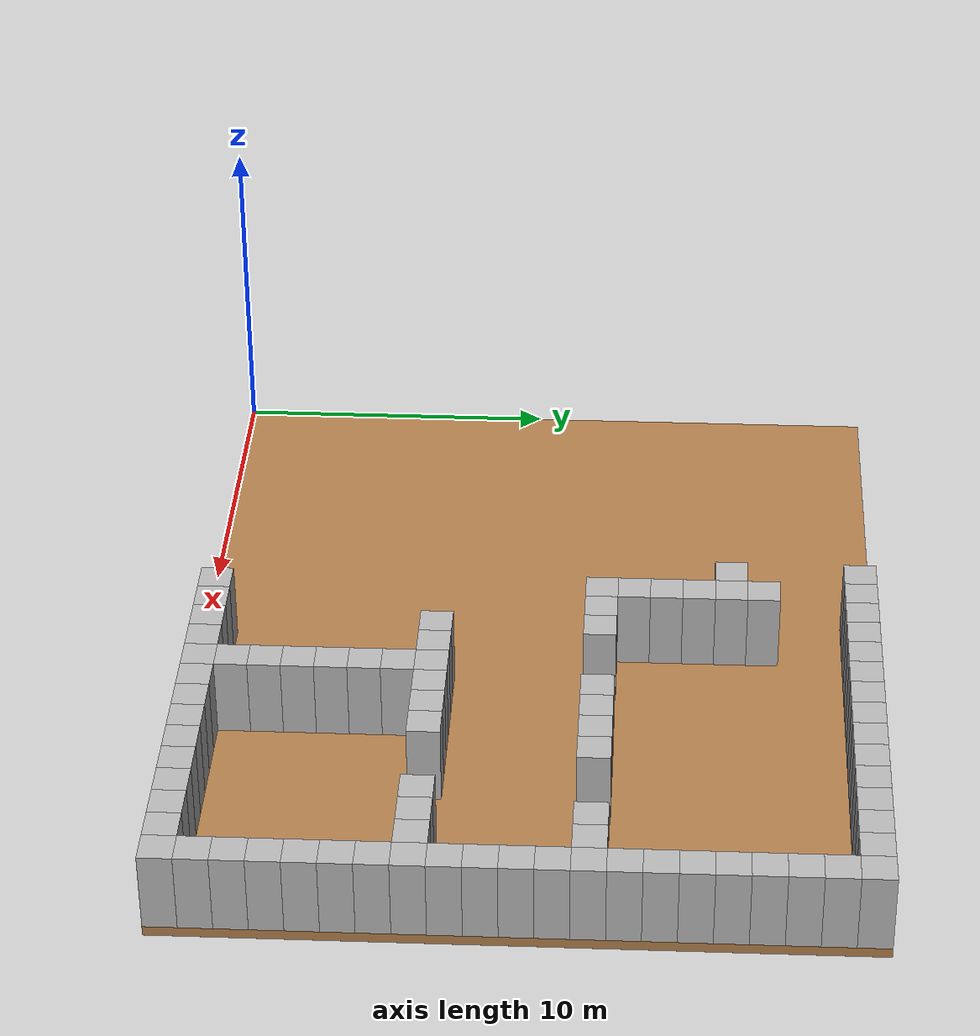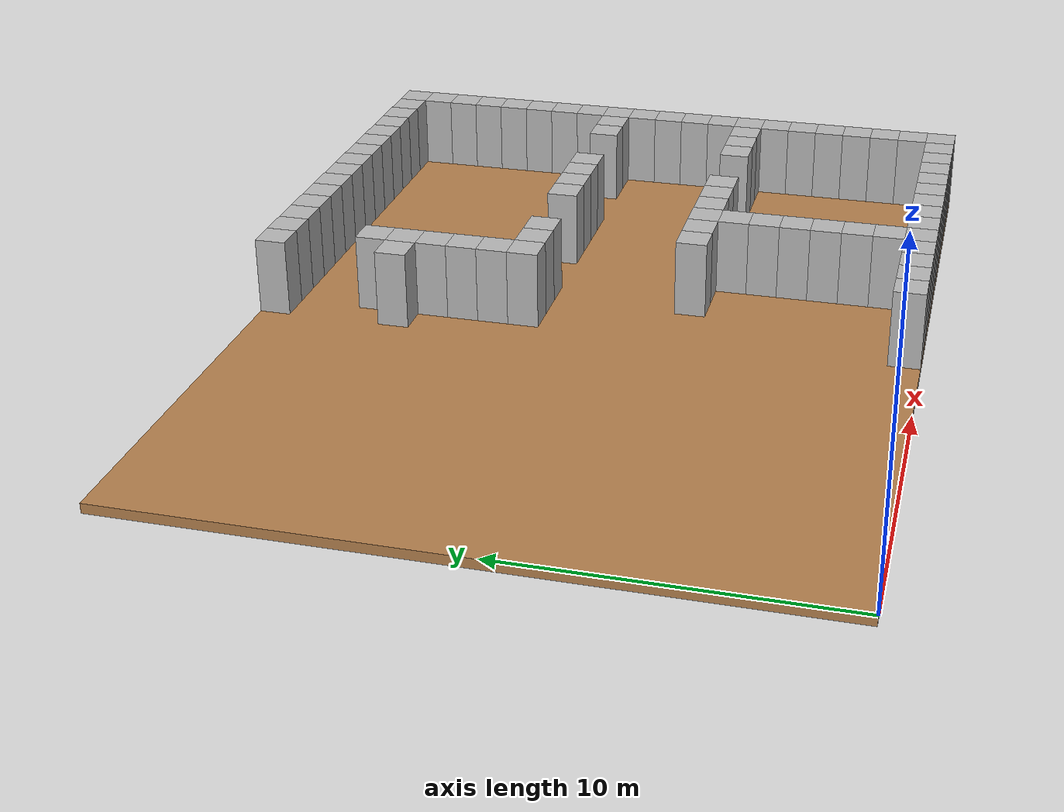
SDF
<sdf version="1.4">
 <world name="default">
  <model name="floor">
   <pose>13.5 10.5 -0.15625 0 0 0</pose>
   <static>true</static>
   <link name="link">
    <collision name="collision"><geometry><box><size>27.0 21.0 0.3125</size></box></geometry></collision>
    <visual name="visual">
     <material>
      <script><uri>file://media/materials/scripts/Gazebo.material</uri><name>Gazebo/Wood</name></script>
     </material>
     <geometry><box><size>27.0 21.0 0.3125</size></box></geometry>
    </visual>
   </link>
  </model>
  <model name="box_12_16">
   <pose>12.5 16.5 1.25 0 0 0</pose>
   <static>true</static>
   <link name="link">
    <collision name="collision"><geometry><box><size>1.0 1.0 2.5</size></box></geometry></collision>
    <visual name="body_visual">
     <material>
      <script><uri>file://media/materials/scripts/repeated.material</uri><name>Repeated/seamless</name></script>
     </material>
     <geometry><box><size>1.0 1.0 2.5</size></box></geometry>
    </visual>
   </link>
  </model>
  <model name="box_12_20">
   <pose>12.5 20.5 1.25 0 0 0</pose>
   <static>true</static>
   <link name="link">
    <collision name="collision"><geometry><box><size>1.0 1.0 2.5</size></box></geometry></collision>
    <visual name="body_visual">
     <material>
      <script><uri>file://media/materials/scripts/repeated.material</uri><name>Repeated/seamless</name></script>
     </material>
     <geometry><box><size>1.0 1.0 2.5</size></box></geometry>
    </visual>
   </link>
  </model>
  <model name="box_13_0">
   <pose>13.5 0.5 1.25 0 0 0</pose>
   <static>true</static>
   <link name="link">
    <collision name="collision"><geometry><box><size>1.0 1.0 2.5</size></box></geometry></collision>
    <visual name="body_visual">
     <material>
      <script><uri>file://media/materials/scripts/repeated.material</uri><name>Repeated/seamless</name></script>
     </material>
     <geometry><box><size>1.0 1.0 2.5</size></box></geometry>
    </visual>
   </link>
  </model>
  <model name="box_13_12">
   <pose>13.5 12.5 1.25 0 0 0</pose>
   <static>true</static>
   <link name="link">
    <collision name="collision"><geometry><box><size>1.0 1.0 2.5</size></box></geometry></collision>
    <visual name="body_visual">
     <material>
      <script><uri>file://media/materials/scripts/repeated.material</uri><name>Repeated/seamless</name></script>
     </material>
     <geometry><box><size>1.0 1.0 2.5</size></box></geometry>
    </visual>
   </link>
  </model>
  <model name="box_13_13">
   <pose>13.5 13.5 1.25 0 0 0</pose>
   <static>true</static>
   <link name="link">
    <collision name="collision"><geometry><box><size>1.0 1.0 2.5</size></box></geometry></collision>
    <visual name="body_visual">
     <material>
      <script><uri>file://media/materials/scripts/repeated.material</uri><name>Repeated/seamless</name></script>
     </material>
     <geometry><box><size>1.0 1.0 2.5</size></box></geometry>
    </visual>
   </link>
  </model>
  <model name="box_13_14">
   <pose>13.5 14.5 1.25 0 0 0</pose>
   <static>true</static>
   <link name="link">
    <collision name="collision"><geometry><box><size>1.0 1.0 2.5</size></box></geometry></collision>
    <visual name="body_visual">
     <material>
      <script><uri>file://media/materials/scripts/repeated.material</uri><name>Repeated/seamless</name></script>
     </material>
     <geometry><box><size>1.0 1.0 2.5</size></box></geometry>
    </visual>
   </link>
  </model>
  <model name="box_13_15">
   <pose>13.5 15.5 1.25 0 0 0</pose>
   <static>true</static>
   <link name="link">
    <collision name="collision"><geometry><box><size>1.0 1.0 2.5</size></box></geometry></collision>
    <visual name="body_visual">
     <material>
      <script><uri>file://media/materials/scripts/repeated.material</uri><name>Repeated/seamless</name></script>
     </material>
     <geometry><box><size>1.0 1.0 2.5</size></box></geometry>
    </visual>
   </link>
  </model>
  <model name="box_13_16">
   <pose>13.5 16.5 1.25 0 0 0</pose>
   <static>true</static>
   <link name="link">
    <collision name="collision"><geometry><box><size>1.0 1.0 2.5</size></box></geometry></collision>
    <visual name="body_visual">
     <material>
      <script><uri>file://media/materials/scripts/repeated.material</uri><name>Repeated/seamless</name></script>
     </material>
     <geometry><box><size>1.0 1.0 2.5</size></box></geometry>
    </visual>
   </link>
  </model>
  <model name="box_13_17">
   <pose>13.5 17.5 1.25 0 0 0</pose>
   <static>true</static>
   <link name="link">
    <collision name="collision"><geometry><box><size>1.0 1.0 2.5</size></box></geometry></collision>
    <visual name="body_visual">
     <material>
      <script><uri>file://media/materials/scripts/repeated.material</uri><name>Repeated/seamless</name></script>
     </material>
     <geometry><box><size>1.0 1.0 2.5</size></box></geometry>
    </visual>
   </link>
  </model>
  <model name="box_13_20">
   <pose>13.5 20.5 1.25 0 0 0</pose>
   <static>true</static>
   <link name="link">
    <collision name="collision"><geometry><box><size>1.0 1.0 2.5</size></box></geometry></collision>
    <visual name="body_visual">
     <material>
      <script><uri>file://media/materials/scripts/repeated.material</uri><name>Repeated/seamless</name></script>
     </material>
     <geometry><box><size>1.0 1.0 2.5</size></box></geometry>
    </visual>
   </link>
  </model>
  <model name="box_14_0">
   <pose>14.5 0.5 1.25 0 0 0</pose>
   <static>true</static>
   <link name="link">
    <collision name="collision"><geometry><box><size>1.0 1.0 2.5</size></box></geometry></collision>
    <visual name="body_visual">
     <material>
      <script><uri>file://media/materials/scripts/repeated.material</uri><name>Repeated/seamless</name></script>
     </material>
     <geometry><box><size>1.0 1.0 2.5</size></box></geometry>
    </visual>
   </link>
  </model>
  <model name="box_14_12">
   <pose>14.5 12.5 1.25 0 0 0</pose>
   <static>true</static>
   <link name="link">
    <collision name="collision"><geometry><box><size>1.0 1.0 2.5</size></box></geometry></collision>
    <visual name="body_visual">
     <material>
      <script><uri>file://media/materials/scripts/repeated.material</uri><name>Repeated/seamless</name></script>
     </material>
     <geometry><box><size>1.0 1.0 2.5</size></box></geometry>
    </visual>
   </link>
  </model>
  <model name="box_14_20">
   <pose>14.5 20.5 1.25 0 0 0</pose>
   <static>true</static>
   <link name="link">
    <collision name="collision"><geometry><box><size>1.0 1.0 2.5</size></box></geometry></collision>
    <visual name="body_visual">
     <material>
      <script><uri>file://media/materials/scripts/repeated.material</uri><name>Repeated/seamless</name></script>
     </material>
     <geometry><box><size>1.0 1.0 2.5</size></box></geometry>
    </visual>
   </link>
  </model>
  <model name="box_15_0">
   <pose>15.5 0.5 1.25 0 0 0</pose>
   <static>true</static>
   <link name="link">
    <collision name="collision"><geometry><box><size>1.0 1.0 2.5</size></box></geometry></collision>
    <visual name="body_visual">
     <material>
      <script><uri>file://media/materials/scripts/repeated.material</uri><name>Repeated/seamless</name></script>
     </material>
     <geometry><box><size>1.0 1.0 2.5</size></box></geometry>
    </visual>
   </link>
  </model>
  <model name="box_15_7">
   <pose>15.5 7.5 1.25 0 0 0</pose>
   <static>true</static>
   <link name="link">
    <collision name="collision"><geometry><box><size>1.0 1.0 2.5</size></box></geometry></collision>
    <visual name="body_visual">
     <material>
      <script><uri>file://media/materials/scripts/repeated.material</uri><name>Repeated/seamless</name></script>
     </material>
     <geometry><box><size>1.0 1.0 2.5</size></box></geometry>
    </visual>
   </link>
  </model>
  <model name="box_15_12">
   <pose>15.5 12.5 1.25 0 0 0</pose>
   <static>true</static>
   <link name="link">
    <collision name="collision"><geometry><box><size>1.0 1.0 2.5</size></box></geometry></collision>
    <visual name="body_visual">
     <material>
      <script><uri>file://media/materials/scripts/repeated.material</uri><name>Repeated/seamless</name></script>
     </material>
     <geometry><box><size>1.0 1.0 2.5</size></box></geometry>
    </visual>
   </link>
  </model>
  <model name="box_15_20">
   <pose>15.5 20.5 1.25 0 0 0</pose>
   <static>true</static>
   <link name="link">
    <collision name="collision"><geometry><box><size>1.0 1.0 2.5</size></box></geometry></collision>
    <visual name="body_visual">
     <material>
      <script><uri>file://media/materials/scripts/repeated.material</uri><name>Repeated/seamless</name></script>
     </material>
     <geometry><box><size>1.0 1.0 2.5</size></box></geometry>
    </visual>
   </link>
  </model>
  <model name="box_16_0">
   <pose>16.5 0.5 1.25 0 0 0</pose>
   <static>true</static>
   <link name="link">
    <collision name="collision"><geometry><box><size>1.0 1.0 2.5</size></box></geometry></collision>
    <visual name="body_visual">
     <material>
      <script><uri>file://media/materials/scripts/repeated.material</uri><name>Repeated/seamless</name></script>
     </material>
     <geometry><box><size>1.0 1.0 2.5</size></box></geometry>
    </visual>
   </link>
  </model>
  <model name="box_16_7">
   <pose>16.5 7.5 1.25 0 0 0</pose>
   <static>true</static>
   <link name="link">
    <collision name="collision"><geometry><box><size>1.0 1.0 2.5</size></box></geometry></collision>
    <visual name="body_visual">
     <material>
      <script><uri>file://media/materials/scripts/repeated.material</uri><name>Repeated/seamless</name></script>
     </material>
     <geometry><box><size>1.0 1.0 2.5</size></box></geometry>
    </visual>
   </link>
  </model>
  <model name="box_16_20">
   <pose>16.5 20.5 1.25 0 0 0</pose>
   <static>true</static>
   <link name="link">
    <collision name="collision"><geometry><box><size>1.0 1.0 2.5</size></box></geometry></collision>
    <visual name="body_visual">
     <material>
      <script><uri>file://media/materials/scripts/repeated.material</uri><name>Repeated/seamless</name></script>
     </material>
     <geometry><box><size>1.0 1.0 2.5</size></box></geometry>
    </visual>
   </link>
  </model>
  <model name="box_17_0">
   <pose>17.5 0.5 1.25 0 0 0</pose>
   <static>true</static>
   <link name="link">
    <collision name="collision"><geometry><box><size>1.0 1.0 2.5</size></box></geometry></collision>
    <visual name="body_visual">
     <material>
      <script><uri>file://media/materials/scripts/repeated.material</uri><name>Repeated/seamless</name></script>
     </material>
     <geometry><box><size>1.0 1.0 2.5</size></box></geometry>
    </visual>
   </link>
  </model>
  <model name="box_17_1">
   <pose>17.5 1.5 1.25 0 0 0</pose>
   <static>true</static>
   <link name="link">
    <collision name="collision"><geometry><box><size>1.0 1.0 2.5</size></box></geometry></collision>
    <visual name="body_visual">
     <material>
      <script><uri>file://media/materials/scripts/repeated.material</uri><name>Repeated/seamless</name></script>
     </material>
     <geometry><box><size>1.0 1.0 2.5</size></box></geometry>
    </visual>
   </link>
  </model>
  <model name="box_17_2">
   <pose>17.5 2.5 1.25 0 0 0</pose>
   <static>true</static>
   <link name="link">
    <collision name="collision"><geometry><box><size>1.0 1.0 2.5</size></box></geometry></collision>
    <visual name="body_visual">
     <material>
      <script><uri>file://media/materials/scripts/repeated.material</uri><name>Repeated/seamless</name></script>
     </material>
     <geometry><box><size>1.0 1.0 2.5</size></box></geometry>
    </visual>
   </link>
  </model>
  <model name="box_17_3">
   <pose>17.5 3.5 1.25 0 0 0</pose>
   <static>true</static>
   <link name="link">
    <collision name="collision"><geometry><box><size>1.0 1.0 2.5</size></box></geometry></collision>
    <visual name="body_visual">
     <material>
      <script><uri>file://media/materials/scripts/repeated.material</uri><name>Repeated/seamless</name></script>
     </material>
     <geometry><box><size>1.0 1.0 2.5</size></box></geometry>
    </visual>
   </link>
  </model>
  <model name="box_17_4">
   <pose>17.5 4.5 1.25 0 0 0</pose>
   <static>true</static>
   <link name="link">
    <collision name="collision"><geometry><box><size>1.0 1.0 2.5</size></box></geometry></collision>
    <visual name="body_visual">
     <material>
      <script><uri>file://media/materials/scripts/repeated.material</uri><name>Repeated/seamless</name></script>
     </material>
     <geometry><box><size>1.0 1.0 2.5</size></box></geometry>
    </visual>
   </link>
  </model>
  <model name="box_17_5">
   <pose>17.5 5.5 1.25 0 0 0</pose>
   <static>true</static>
   <link name="link">
    <collision name="collision"><geometry><box><size>1.0 1.0 2.5</size></box></geometry></collision>
    <visual name="body_visual">
     <material>
      <script><uri>file://media/materials/scripts/repeated.material</uri><name>Repeated/seamless</name></script>
     </material>
     <geometry><box><size>1.0 1.0 2.5</size></box></geometry>
    </visual>
   </link>
  </model>
  <model name="box_17_6">
   <pose>17.5 6.5 1.25 0 0 0</pose>
   <static>true</static>
   <link name="link">
    <collision name="collision"><geometry><box><size>1.0 1.0 2.5</size></box></geometry></collision>
    <visual name="body_visual">
     <material>
      <script><uri>file://media/materials/scripts/repeated.material</uri><name>Repeated/seamless</name></script>
     </material>
     <geometry><box><size>1.0 1.0 2.5</size></box></geometry>
    </visual>
   </link>
  </model>
  <model name="box_17_7">
   <pose>17.5 7.5 1.25 0 0 0</pose>
   <static>true</static>
   <link name="link">
    <collision name="collision"><geometry><box><size>1.0 1.0 2.5</size></box></geometry></collision>
    <visual name="body_visual">
     <material>
      <script><uri>file://media/materials/scripts/repeated.material</uri><name>Repeated/seamless</name></script>
     </material>
     <geometry><box><size>1.0 1.0 2.5</size></box></geometry>
    </visual>
   </link>
  </model>
  <model name="box_17_20">
   <pose>17.5 20.5 1.25 0 0 0</pose>
   <static>true</static>
   <link name="link">
    <collision name="collision"><geometry><box><size>1.0 1.0 2.5</size></box></geometry></collision>
    <visual name="body_visual">
     <material>
      <script><uri>file://media/materials/scripts/repeated.material</uri><name>Repeated/seamless</name></script>
     </material>
     <geometry><box><size>1.0 1.0 2.5</size></box></geometry>
    </visual>
   </link>
  </model>
  <model name="box_18_0">
   <pose>18.5 0.5 1.25 0 0 0</pose>
   <static>true</static>
   <link name="link">
    <collision name="collision"><geometry><box><size>1.0 1.0 2.5</size></box></geometry></collision>
    <visual name="body_visual">
     <material>
      <script><uri>file://media/materials/scripts/repeated.material</uri><name>Repeated/seamless</name></script>
     </material>
     <geometry><box><size>1.0 1.0 2.5</size></box></geometry>
    </visual>
   </link>
  </model>
  <model name="box_18_7">
   <pose>18.5 7.5 1.25 0 0 0</pose>
   <static>true</static>
   <link name="link">
    <collision name="collision"><geometry><box><size>1.0 1.0 2.5</size></box></geometry></collision>
    <visual name="body_visual">
     <material>
      <script><uri>file://media/materials/scripts/repeated.material</uri><name>Repeated/seamless</name></script>
     </material>
     <geometry><box><size>1.0 1.0 2.5</size></box></geometry>
    </visual>
   </link>
  </model>
  <model name="box_18_12">
   <pose>18.5 12.5 1.25 0 0 0</pose>
   <static>true</static>
   <link name="link">
    <collision name="collision"><geometry><box><size>1.0 1.0 2.5</size></box></geometry></collision>
    <visual name="body_visual">
     <material>
      <script><uri>file://media/materials/scripts/repeated.material</uri><name>Repeated/seamless</name></script>
     </material>
     <geometry><box><size>1.0 1.0 2.5</size></box></geometry>
    </visual>
   </link>
  </model>
  <model name="box_18_20">
   <pose>18.5 20.5 1.25 0 0 0</pose>
   <static>true</static>
   <link name="link">
    <collision name="collision"><geometry><box><size>1.0 1.0 2.5</size></box></geometry></collision>
    <visual name="body_visual">
     <material>
      <script><uri>file://media/materials/scripts/repeated.material</uri><name>Repeated/seamless</name></script>
     </material>
     <geometry><box><size>1.0 1.0 2.5</size></box></geometry>
    </visual>
   </link>
  </model>
  <model name="box_19_0">
   <pose>19.5 0.5 1.25 0 0 0</pose>
   <static>true</static>
   <link name="link">
    <collision name="collision"><geometry><box><size>1.0 1.0 2.5</size></box></geometry></collision>
    <visual name="body_visual">
     <material>
      <script><uri>file://media/materials/scripts/repeated.material</uri><name>Repeated/seamless</name></script>
     </material>
     <geometry><box><size>1.0 1.0 2.5</size></box></geometry>
    </visual>
   </link>
  </model>
  <model name="box_19_7">
   <pose>19.5 7.5 1.25 0 0 0</pose>
   <static>true</static>
   <link name="link">
    <collision name="collision"><geometry><box><size>1.0 1.0 2.5</size></box></geometry></collision>
    <visual name="body_visual">
     <material>
      <script><uri>file://media/materials/scripts/repeated.material</uri><name>Repeated/seamless</name></script>
     </material>
     <geometry><box><size>1.0 1.0 2.5</size></box></geometry>
    </visual>
   </link>
  </model>
  <model name="box_19_12">
   <pose>19.5 12.5 1.25 0 0 0</pose>
   <static>true</static>
   <link name="link">
    <collision name="collision"><geometry><box><size>1.0 1.0 2.5</size></box></geometry></collision>
    <visual name="body_visual">
     <material>
      <script><uri>file://media/materials/scripts/repeated.material</uri><name>Repeated/seamless</name></script>
     </material>
     <geometry><box><size>1.0 1.0 2.5</size></box></geometry>
    </visual>
   </link>
  </model>
  <model name="box_19_20">
   <pose>19.5 20.5 1.25 0 0 0</pose>
   <static>true</static>
   <link name="link">
    <collision name="collision"><geometry><box><size>1.0 1.0 2.5</size></box></geometry></collision>
    <visual name="body_visual">
     <material>
      <script><uri>file://media/materials/scripts/repeated.material</uri><name>Repeated/seamless</name></script>
     </material>
     <geometry><box><size>1.0 1.0 2.5</size></box></geometry>
    </visual>
   </link>
  </model>
  <model name="box_20_0">
   <pose>20.5 0.5 1.25 0 0 0</pose>
   <static>true</static>
   <link name="link">
    <collision name="collision"><geometry><box><size>1.0 1.0 2.5</size></box></geometry></collision>
    <visual name="body_visual">
     <material>
      <script><uri>file://media/materials/scripts/repeated.material</uri><name>Repeated/seamless</name></script>
     </material>
     <geometry><box><size>1.0 1.0 2.5</size></box></geometry>
    </visual>
   </link>
  </model>
  <model name="box_20_7">
   <pose>20.5 7.5 1.25 0 0 0</pose>
   <static>true</static>
   <link name="link">
    <collision name="collision"><geometry><box><size>1.0 1.0 2.5</size></box></geometry></collision>
    <visual name="body_visual">
     <material>
      <script><uri>file://media/materials/scripts/repeated.material</uri><name>Repeated/seamless</name></script>
     </material>
     <geometry><box><size>1.0 1.0 2.5</size></box></geometry>
    </visual>
   </link>
  </model>
  <model name="box_20_12">
   <pose>20.5 12.5 1.25 0 0 0</pose>
   <static>true</static>
   <link name="link">
    <collision name="collision"><geometry><box><size>1.0 1.0 2.5</size></box></geometry></collision>
    <visual name="body_visual">
     <material>
      <script><uri>file://media/materials/scripts/repeated.material</uri><name>Repeated/seamless</name></script>
     </material>
     <geometry><box><size>1.0 1.0 2.5</size></box></geometry>
    </visual>
   </link>
  </model>
  <model name="box_20_20">
   <pose>20.5 20.5 1.25 0 0 0</pose>
   <static>true</static>
   <link name="link">
    <collision name="collision"><geometry><box><size>1.0 1.0 2.5</size></box></geometry></collision>
    <visual name="body_visual">
     <material>
      <script><uri>file://media/materials/scripts/repeated.material</uri><name>Repeated/seamless</name></script>
     </material>
     <geometry><box><size>1.0 1.0 2.5</size></box></geometry>
    </visual>
   </link>
  </model>
  <model name="box_21_0">
   <pose>21.5 0.5 1.25 0 0 0</pose>
   <static>true</static>
   <link name="link">
    <collision name="collision"><geometry><box><size>1.0 1.0 2.5</size></box></geometry></collision>
    <visual name="body_visual">
     <material>
      <script><uri>file://media/materials/scripts/repeated.material</uri><name>Repeated/seamless</name></script>
     </material>
     <geometry><box><size>1.0 1.0 2.5</size></box></geometry>
    </visual>
   </link>
  </model>
  <model name="box_21_12">
   <pose>21.5 12.5 1.25 0 0 0</pose>
   <static>true</static>
   <link name="link">
    <collision name="collision"><geometry><box><size>1.0 1.0 2.5</size></box></geometry></collision>
    <visual name="body_visual">
     <material>
      <script><uri>file://media/materials/scripts/repeated.material</uri><name>Repeated/seamless</name></script>
     </material>
     <geometry><box><size>1.0 1.0 2.5</size></box></geometry>
    </visual>
   </link>
  </model>
  <model name="box_21_20">
   <pose>21.5 20.5 1.25 0 0 0</pose>
   <static>true</static>
   <link name="link">
    <collision name="collision"><geometry><box><size>1.0 1.0 2.5</size></box></geometry></collision>
    <visual name="body_visual">
     <material>
      <script><uri>file://media/materials/scripts/repeated.material</uri><name>Repeated/seamless</name></script>
     </material>
     <geometry><box><size>1.0 1.0 2.5</size></box></geometry>
    </visual>
   </link>
  </model>
  <model name="box_22_0">
   <pose>22.5 0.5 1.25 0 0 0</pose>
   <static>true</static>
   <link name="link">
    <collision name="collision"><geometry><box><size>1.0 1.0 2.5</size></box></geometry></collision>
    <visual name="body_visual">
     <material>
      <script><uri>file://media/materials/scripts/repeated.material</uri><name>Repeated/seamless</name></script>
     </material>
     <geometry><box><size>1.0 1.0 2.5</size></box></geometry>
    </visual>
   </link>
  </model>
  <model name="box_22_20">
   <pose>22.5 20.5 1.25 0 0 0</pose>
   <static>true</static>
   <link name="link">
    <collision name="collision"><geometry><box><size>1.0 1.0 2.5</size></box></geometry></collision>
    <visual name="body_visual">
     <material>
      <script><uri>file://media/materials/scripts/repeated.material</uri><name>Repeated/seamless</name></script>
     </material>
     <geometry><box><size>1.0 1.0 2.5</size></box></geometry>
    </visual>
   </link>
  </model>
  <model name="box_23_0">
   <pose>23.5 0.5 1.25 0 0 0</pose>
   <static>true</static>
   <link name="link">
    <collision name="collision"><geometry><box><size>1.0 1.0 2.5</size></box></geometry></collision>
    <visual name="body_visual">
     <material>
      <script><uri>file://media/materials/scripts/repeated.material</uri><name>Repeated/seamless</name></script>
     </material>
     <geometry><box><size>1.0 1.0 2.5</size></box></geometry>
    </visual>
   </link>
  </model>
  <model name="box_23_7">
   <pose>23.5 7.5 1.25 0 0 0</pose>
   <static>true</static>
   <link name="link">
    <collision name="collision"><geometry><box><size>1.0 1.0 2.5</size></box></geometry></collision>
    <visual name="body_visual">
     <material>
      <script><uri>file://media/materials/scripts/repeated.material</uri><name>Repeated/seamless</name></script>
     </material>
     <geometry><box><size>1.0 1.0 2.5</size></box></geometry>
    </visual>
   </link>
  </model>
  <model name="box_23_20">
   <pose>23.5 20.5 1.25 0 0 0</pose>
   <static>true</static>
   <link name="link">
    <collision name="collision"><geometry><box><size>1.0 1.0 2.5</size></box></geometry></collision>
    <visual name="body_visual">
     <material>
      <script><uri>file://media/materials/scripts/repeated.material</uri><name>Repeated/seamless</name></script>
     </material>
     <geometry><box><size>1.0 1.0 2.5</size></box></geometry>
    </visual>
   </link>
  </model>
  <model name="box_24_0">
   <pose>24.5 0.5 1.25 0 0 0</pose>
   <static>true</static>
   <link name="link">
    <collision name="collision"><geometry><box><size>1.0 1.0 2.5</size></box></geometry></collision>
    <visual name="body_visual">
     <material>
      <script><uri>file://media/materials/scripts/repeated.material</uri><name>Repeated/seamless</name></script>
     </material>
     <geometry><box><size>1.0 1.0 2.5</size></box></geometry>
    </visual>
   </link>
  </model>
  <model name="box_24_7">
   <pose>24.5 7.5 1.25 0 0 0</pose>
   <static>true</static>
   <link name="link">
    <collision name="collision"><geometry><box><size>1.0 1.0 2.5</size></box></geometry></collision>
    <visual name="body_visual">
     <material>
      <script><uri>file://media/materials/scripts/repeated.material</uri><name>Repeated/seamless</name></script>
     </material>
     <geometry><box><size>1.0 1.0 2.5</size></box></geometry>
    </visual>
   </link>
  </model>
  <model name="box_24_12">
   <pose>24.5 12.5 1.25 0 0 0</pose>
   <static>true</static>
   <link name="link">
    <collision name="collision"><geometry><box><size>1.0 1.0 2.5</size></box></geometry></collision>
    <visual name="body_visual">
     <material>
      <script><uri>file://media/materials/scripts/repeated.material</uri><name>Repeated/seamless</name></script>
     </material>
     <geometry><box><size>1.0 1.0 2.5</size></box></geometry>
    </visual>
   </link>
  </model>
  <model name="box_24_20">
   <pose>24.5 20.5 1.25 0 0 0</pose>
   <static>true</static>
   <link name="link">
    <collision name="collision"><geometry><box><size>1.0 1.0 2.5</size></box></geometry></collision>
    <visual name="body_visual">
     <material>
      <script><uri>file://media/materials/scripts/repeated.material</uri><name>Repeated/seamless</name></script>
     </material>
     <geometry><box><size>1.0 1.0 2.5</size></box></geometry>
    </visual>
   </link>
  </model>
  <model name="box_25_0">
   <pose>25.5 0.5 1.25 0 0 0</pose>
   <static>true</static>
   <link name="link">
    <collision name="collision"><geometry><box><size>1.0 1.0 2.5</size></box></geometry></collision>
    <visual name="body_visual">
     <material>
      <script><uri>file://media/materials/scripts/repeated.material</uri><name>Repeated/seamless</name></script>
     </material>
     <geometry><box><size>1.0 1.0 2.5</size></box></geometry>
    </visual>
   </link>
  </model>
  <model name="box_25_7">
   <pose>25.5 7.5 1.25 0 0 0</pose>
   <static>true</static>
   <link name="link">
    <collision name="collision"><geometry><box><size>1.0 1.0 2.5</size></box></geometry></collision>
    <visual name="body_visual">
     <material>
      <script><uri>file://media/materials/scripts/repeated.material</uri><name>Repeated/seamless</name></script>
     </material>
     <geometry><box><size>1.0 1.0 2.5</size></box></geometry>
    </visual>
   </link>
  </model>
  <model name="box_25_12">
   <pose>25.5 12.5 1.25 0 0 0</pose>
   <static>true</static>
   <link name="link">
    <collision name="collision"><geometry><box><size>1.0 1.0 2.5</size></box></geometry></collision>
    <visual name="body_visual">
     <material>
      <script><uri>file://media/materials/scripts/repeated.material</uri><name>Repeated/seamless</name></script>
     </material>
     <geometry><box><size>1.0 1.0 2.5</size></box></geometry>
    </visual>
   </link>
  </model>
  <model name="box_25_20">
   <pose>25.5 20.5 1.25 0 0 0</pose>
   <static>true</static>
   <link name="link">
    <collision name="collision"><geometry><box><size>1.0 1.0 2.5</size></box></geometry></collision>
    <visual name="body_visual">
     <material>
      <script><uri>file://media/materials/scripts/repeated.material</uri><name>Repeated/seamless</name></script>
     </material>
     <geometry><box><size>1.0 1.0 2.5</size></box></geometry>
    </visual>
   </link>
  </model>
  <model name="box_26_0">
   <pose>26.5 0.5 1.25 0 0 0</pose>
   <static>true</static>
   <link name="link">
    <collision name="collision"><geometry><box><size>1.0 1.0 2.5</size></box></geometry></collision>
    <visual name="body_visual">
     <material>
      <script><uri>file://media/materials/scripts/repeated.material</uri><name>Repeated/seamless</name></script>
     </material>
     <geometry><box><size>1.0 1.0 2.5</size></box></geometry>
    </visual>
   </link>
  </model>
  <model name="box_26_1">
   <pose>26.5 1.5 1.25 0 0 0</pose>
   <static>true</static>
   <link name="link">
    <collision name="collision"><geometry><box><size>1.0 1.0 2.5</size></box></geometry></collision>
    <visual name="body_visual">
     <material>
      <script><uri>file://media/materials/scripts/repeated.material</uri><name>Repeated/seamless</name></script>
     </material>
     <geometry><box><size>1.0 1.0 2.5</size></box></geometry>
    </visual>
   </link>
  </model>
  <model name="box_26_2">
   <pose>26.5 2.5 1.25 0 0 0</pose>
   <static>true</static>
   <link name="link">
    <collision name="collision"><geometry><box><size>1.0 1.0 2.5</size></box></geometry></collision>
    <visual name="body_visual">
     <material>
      <script><uri>file://media/materials/scripts/repeated.material</uri><name>Repeated/seamless</name></script>
     </material>
     <geometry><box><size>1.0 1.0 2.5</size></box></geometry>
    </visual>
   </link>
  </model>
  <model name="box_26_3">
   <pose>26.5 3.5 1.25 0 0 0</pose>
   <static>true</static>
   <link name="link">
    <collision name="collision"><geometry><box><size>1.0 1.0 2.5</size></box></geometry></collision>
    <visual name="body_visual">
     <material>
      <script><uri>file://media/materials/scripts/repeated.material</uri><name>Repeated/seamless</name></script>
     </material>
     <geometry><box><size>1.0 1.0 2.5</size></box></geometry>
    </visual>
   </link>
  </model>
  <model name="box_26_4">
   <pose>26.5 4.5 1.25 0 0 0</pose>
   <static>true</static>
   <link name="link">
    <collision name="collision"><geometry><box><size>1.0 1.0 2.5</size></box></geometry></collision>
    <visual name="body_visual">
     <material>
      <script><uri>file://media/materials/scripts/repeated.material</uri><name>Repeated/seamless</name></script>
     </material>
     <geometry><box><size>1.0 1.0 2.5</size></box></geometry>
    </visual>
   </link>
  </model>
  <model name="box_26_5">
   <pose>26.5 5.5 1.25 0 0 0</pose>
   <static>true</static>
   <link name="link">
    <collision name="collision"><geometry><box><size>1.0 1.0 2.5</size></box></geometry></collision>
    <visual name="body_visual">
     <material>
      <script><uri>file://media/materials/scripts/repeated.material</uri><name>Repeated/seamless</name></script>
     </material>
     <geometry><box><size>1.0 1.0 2.5</size></box></geometry>
    </visual>
   </link>
  </model>
  <model name="box_26_6">
   <pose>26.5 6.5 1.25 0 0 0</pose>
   <static>true</static>
   <link name="link">
    <collision name="collision"><geometry><box><size>1.0 1.0 2.5</size></box></geometry></collision>
    <visual name="body_visual">
     <material>
      <script><uri>file://media/materials/scripts/repeated.material</uri><name>Repeated/seamless</name></script>
     </material>
     <geometry><box><size>1.0 1.0 2.5</size></box></geometry>
    </visual>
   </link>
  </model>
  <model name="box_26_7">
   <pose>26.5 7.5 1.25 0 0 0</pose>
   <static>true</static>
   <link name="link">
    <collision name="collision"><geometry><box><size>1.0 1.0 2.5</size></box></geometry></collision>
    <visual name="body_visual">
     <material>
      <script><uri>file://media/materials/scripts/repeated.material</uri><name>Repeated/seamless</name></script>
     </material>
     <geometry><box><size>1.0 1.0 2.5</size></box></geometry>
    </visual>
   </link>
  </model>
  <model name="box_26_8">
   <pose>26.5 8.5 1.25 0 0 0</pose>
   <static>true</static>
   <link name="link">
    <collision name="collision"><geometry><box><size>1.0 1.0 2.5</size></box></geometry></collision>
    <visual name="body_visual">
     <material>
      <script><uri>file://media/materials/scripts/repeated.material</uri><name>Repeated/seamless</name></script>
     </material>
     <geometry><box><size>1.0 1.0 2.5</size></box></geometry>
    </visual>
   </link>
  </model>
  <model name="box_26_9">
   <pose>26.5 9.5 1.25 0 0 0</pose>
   <static>true</static>
   <link name="link">
    <collision name="collision"><geometry><box><size>1.0 1.0 2.5</size></box></geometry></collision>
    <visual name="body_visual">
     <material>
      <script><uri>file://media/materials/scripts/repeated.material</uri><name>Repeated/seamless</name></script>
     </material>
     <geometry><box><size>1.0 1.0 2.5</size></box></geometry>
    </visual>
   </link>
  </model>
  <model name="box_26_10">
   <pose>26.5 10.5 1.25 0 0 0</pose>
   <static>true</static>
   <link name="link">
    <collision name="collision"><geometry><box><size>1.0 1.0 2.5</size></box></geometry></collision>
    <visual name="body_visual">
     <material>
      <script><uri>file://media/materials/scripts/repeated.material</uri><name>Repeated/seamless</name></script>
     </material>
     <geometry><box><size>1.0 1.0 2.5</size></box></geometry>
    </visual>
   </link>
  </model>
  <model name="box_26_11">
   <pose>26.5 11.5 1.25 0 0 0</pose>
   <static>true</static>
   <link name="link">
    <collision name="collision"><geometry><box><size>1.0 1.0 2.5</size></box></geometry></collision>
    <visual name="body_visual">
     <material>
      <script><uri>file://media/materials/scripts/repeated.material</uri><name>Repeated/seamless</name></script>
     </material>
     <geometry><box><size>1.0 1.0 2.5</size></box></geometry>
    </visual>
   </link>
  </model>
  <model name="box_26_12">
   <pose>26.5 12.5 1.25 0 0 0</pose>
   <static>true</static>
   <link name="link">
    <collision name="collision"><geometry><box><size>1.0 1.0 2.5</size></box></geometry></collision>
    <visual name="body_visual">
     <material>
      <script><uri>file://media/materials/scripts/repeated.material</uri><name>Repeated/seamless</name></script>
     </material>
     <geometry><box><size>1.0 1.0 2.5</size></box></geometry>
    </visual>
   </link>
  </model>
  <model name="box_26_13">
   <pose>26.5 13.5 1.25 0 0 0</pose>
   <static>true</static>
   <link name="link">
    <collision name="collision"><geometry><box><size>1.0 1.0 2.5</size></box></geometry></collision>
    <visual name="body_visual">
     <material>
      <script><uri>file://media/materials/scripts/repeated.material</uri><name>Repeated/seamless</name></script>
     </material>
     <geometry><box><size>1.0 1.0 2.5</size></box></geometry>
    </visual>
   </link>
  </model>
  <model name="box_26_14">
   <pose>26.5 14.5 1.25 0 0 0</pose>
   <static>true</static>
   <link name="link">
    <collision name="collision"><geometry><box><size>1.0 1.0 2.5</size></box></geometry></collision>
    <visual name="body_visual">
     <material>
      <script><uri>file://media/materials/scripts/repeated.material</uri><name>Repeated/seamless</name></script>
     </material>
     <geometry><box><size>1.0 1.0 2.5</size></box></geometry>
    </visual>
   </link>
  </model>
  <model name="box_26_15">
   <pose>26.5 15.5 1.25 0 0 0</pose>
   <static>true</static>
   <link name="link">
    <collision name="collision"><geometry><box><size>1.0 1.0 2.5</size></box></geometry></collision>
    <visual name="body_visual">
     <material>
      <script><uri>file://media/materials/scripts/repeated.material</uri><name>Repeated/seamless</name></script>
     </material>
     <geometry><box><size>1.0 1.0 2.5</size></box></geometry>
    </visual>
   </link>
  </model>
  <model name="box_26_16">
   <pose>26.5 16.5 1.25 0 0 0</pose>
   <static>true</static>
   <link name="link">
    <collision name="collision"><geometry><box><size>1.0 1.0 2.5</size></box></geometry></collision>
    <visual name="body_visual">
     <material>
      <script><uri>file://media/materials/scripts/repeated.material</uri><name>Repeated/seamless</name></script>
     </material>
     <geometry><box><size>1.0 1.0 2.5</size></box></geometry>
    </visual>
   </link>
  </model>
  <model name="box_26_17">
   <pose>26.5 17.5 1.25 0 0 0</pose>
   <static>true</static>
   <link name="link">
    <collision name="collision"><geometry><box><size>1.0 1.0 2.5</size></box></geometry></collision>
    <visual name="body_visual">
     <material>
      <script><uri>file://media/materials/scripts/repeated.material</uri><name>Repeated/seamless</name></script>
     </material>
     <geometry><box><size>1.0 1.0 2.5</size></box></geometry>
    </visual>
   </link>
  </model>
  <model name="box_26_18">
   <pose>26.5 18.5 1.25 0 0 0</pose>
   <static>true</static>
   <link name="link">
    <collision name="collision"><geometry><box><size>1.0 1.0 2.5</size></box></geometry></collision>
    <visual name="body_visual">
     <material>
      <script><uri>file://media/materials/scripts/repeated.material</uri><name>Repeated/seamless</name></script>
     </material>
     <geometry><box><size>1.0 1.0 2.5</size></box></geometry>
    </visual>
   </link>
  </model>
  <model name="box_26_19">
   <pose>26.5 19.5 1.25 0 0 0</pose>
   <static>true</static>
   <link name="link">
    <collision name="collision"><geometry><box><size>1.0 1.0 2.5</size></box></geometry></collision>
    <visual name="body_visual">
     <material>
      <script><uri>file://media/materials/scripts/repeated.material</uri><name>Repeated/seamless</name></script>
     </material>
     <geometry><box><size>1.0 1.0 2.5</size></box></geometry>
    </visual>
   </link>
  </model>
  <model name="box_26_20">
   <pose>26.5 20.5 1.25 0 0 0</pose>
   <static>true</static>
   <link name="link">
    <collision name="collision"><geometry><box><size>1.0 1.0 2.5</size></box></geometry></collision>
    <visual name="body_visual">
     <material>
      <script><uri>file://media/materials/scripts/repeated.material</uri><name>Repeated/seamless</name></script>
     </material>
     <geometry><box><size>1.0 1.0 2.5</size></box></geometry>
    </visual>
   </link>
  </model>
 </world>
</sdf>
